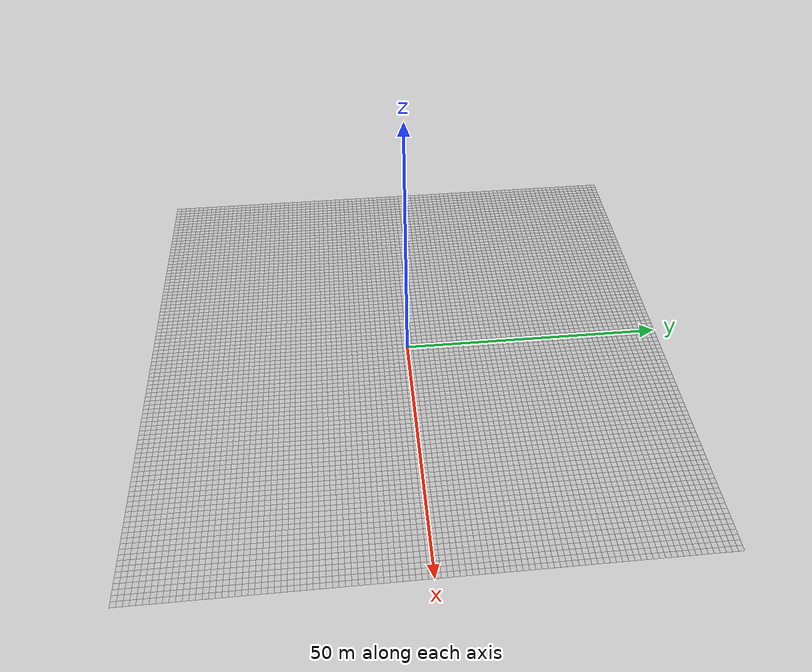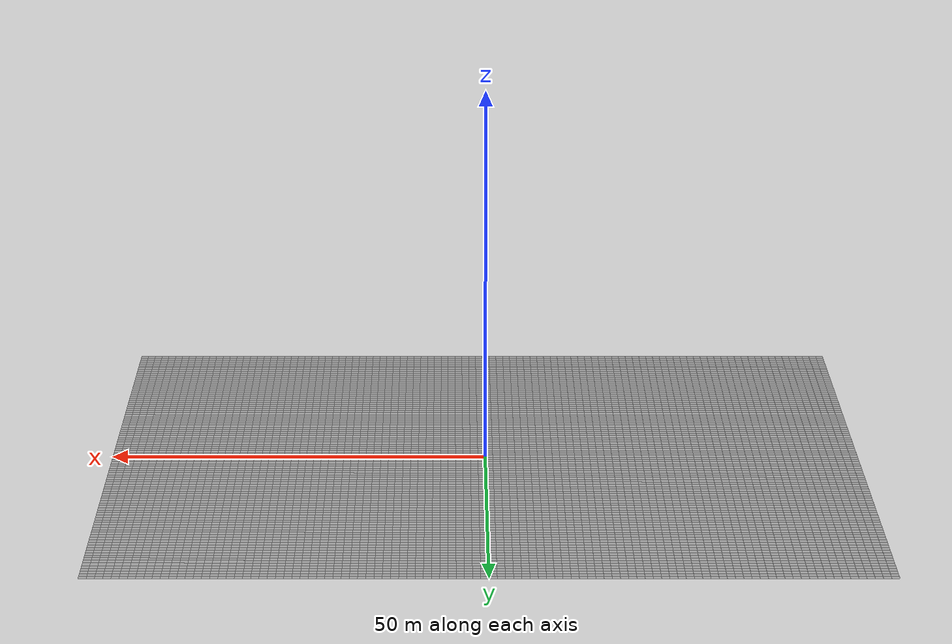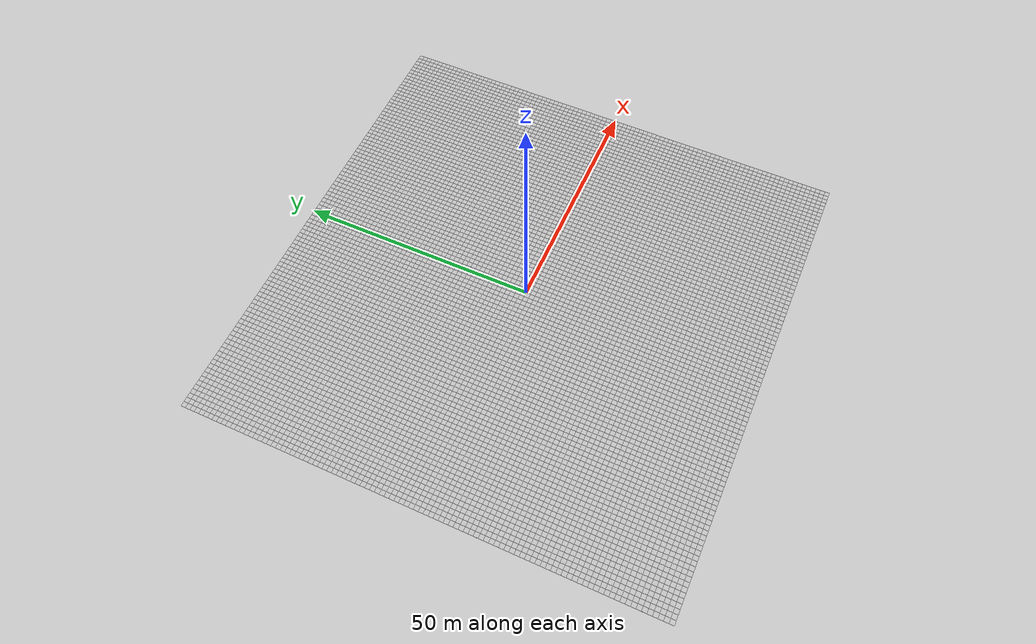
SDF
<sdf version="1.6">
 <world name="default">
  <physics type="ode">
   <ode>
    <solver><type>quick</type><iters>100</iters><sor>1.0</sor></solver>
    <constraints>
     <cfm>0.0</cfm>
     <erp>0.2</erp>
     <contact_max_correcting_vel>0.1</contact_max_correcting_vel>
     <contact_surface_layer>0.0</contact_surface_layer>
    </constraints>
   </ode>
   <real_time_update_rate>-1</real_time_update_rate>
  </physics>
  <gravity>0 0 -9.8</gravity>
  <include><uri>model://sun</uri></include>
  <include>
   <uri>file:///home/wintery/Projects/gazebo/models/random_tile_ground</uri>
   <name>ground_plane</name>
  </include>
 </world>
</sdf>
